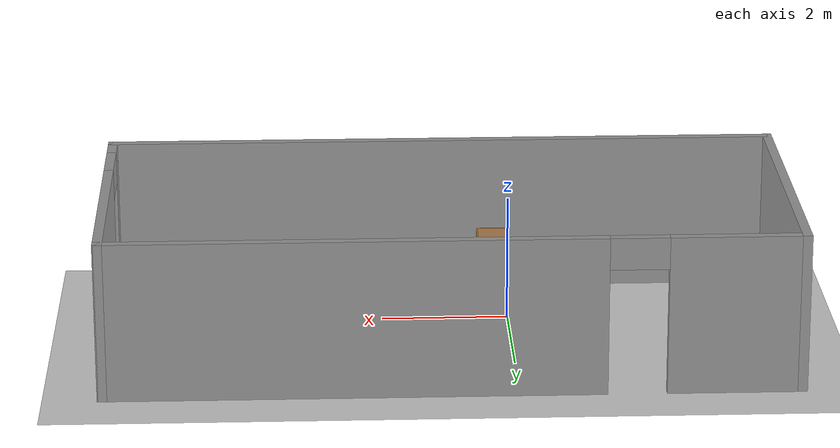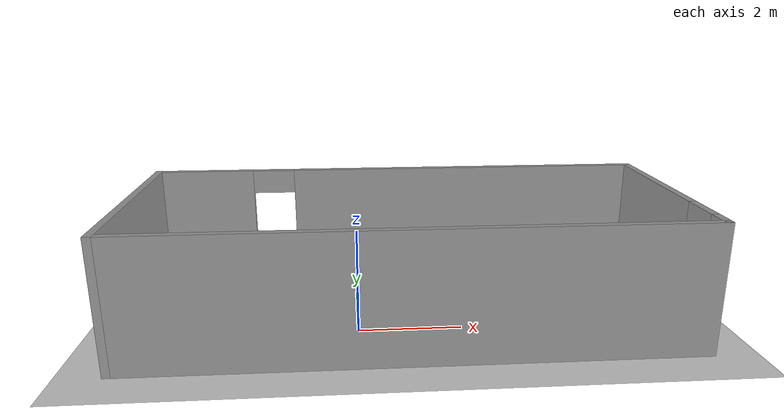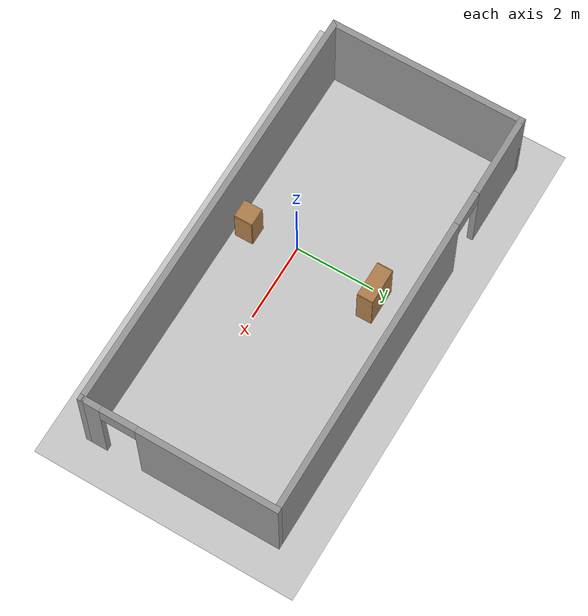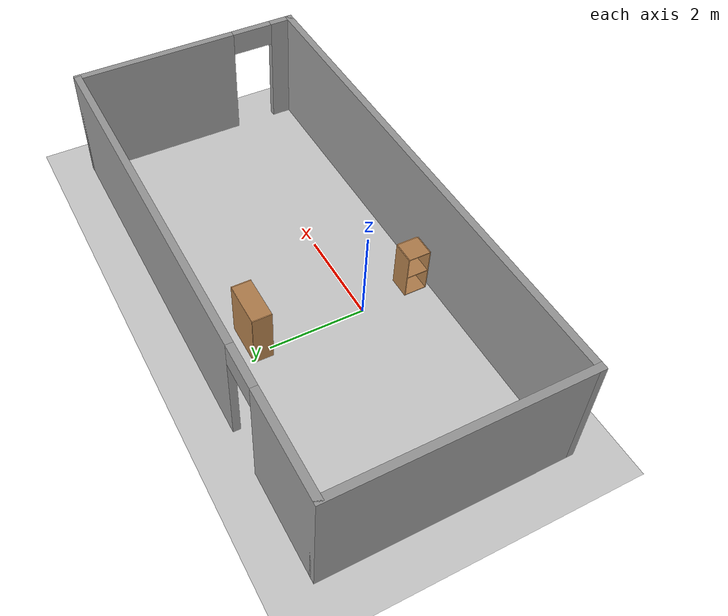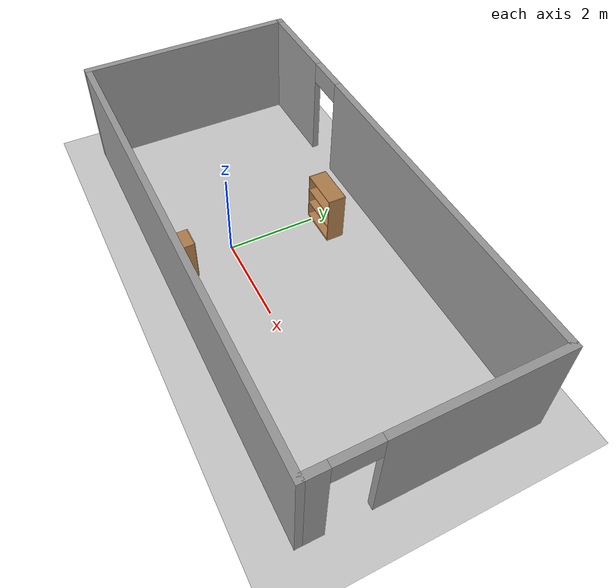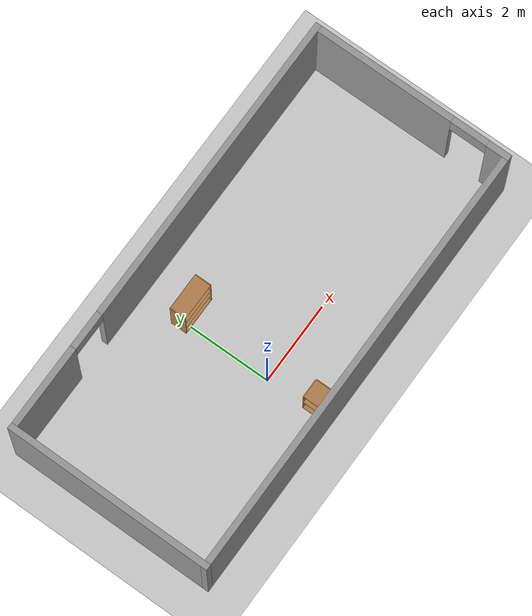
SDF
<sdf version="1.7">
 <world name="default">
  <light name="sun" type="directional">
   <pose>0 0 10 0 -0 0</pose>
   <diffuse>0.8 0.8 0.8 1</diffuse>
   <specular>0.2 0.2 0.2 1</specular>
   <attenuation>
    <range>1000</range>
    <constant>0.9</constant>
    <linear>0.01</linear>
    <quadratic>0.001</quadratic>
   </attenuation>
   <direction>-0.5 0.1 -0.9</direction>
   <spot><inner_angle>0</inner_angle><outer_angle>0</outer_angle><falloff>0</falloff></spot>
  </light>
  <model name="ground_plane">
   <static>1</static>
   <link name="link">
    <collision name="collision">
     <geometry><plane><normal>0 0 1</normal><size>100 100</size></plane></geometry>
     <surface>
      <contact><collide_bitmask>65535</collide_bitmask></contact>
      <friction><ode><mu>100</mu><mu2>50</mu2></ode></friction>
     </surface>
    </collision>
    <visual name="visual">
     <cast_shadows>0</cast_shadows>
     <geometry><plane><normal>0 0 1</normal><size>100 100</size></plane></geometry>
     <material>
      <script><uri>file://media/materials/scripts/gazebo.material</uri><name>Gazebo/Grey</name></script>
     </material>
    </visual>
   </link>
  </model>
  <gravity>0 0 -9.8</gravity>
  <magnetic_field>6e-06 2.3e-05 -4.2e-05</magnetic_field>
  <atmosphere type="adiabatic"/>
  <physics type="ode">
   <max_step_size>0.001</max_step_size>
   <real_time_factor>1</real_time_factor>
   <real_time_update_rate>1000</real_time_update_rate>
  </physics>
  <scene><ambient>0.4 0.4 0.4 1</ambient><background>0.7 0.7 0.7 1</background><shadows>1</shadows></scene>
  <audio><device>default</device></audio>
  <spherical_coordinates>
   <surface_model>EARTH_WGS84</surface_model>
   <latitude_deg>0</latitude_deg>
   <longitude_deg>0</longitude_deg>
   <elevation>0</elevation>
   <heading_deg>0</heading_deg>
  </spherical_coordinates>
  <model name="cabinet">
   <static>1</static>
   <link name="cabinet_bottom_plate">
    <inertial>
     <pose>0 0 -1 0 -0 0</pose>
     <inertia><ixx>2.05</ixx><ixy>0</ixy><ixz>0</ixz><iyy>2.05</iyy><iyz>0</iyz><izz>2.05</izz></inertia>
     <mass>25</mass>
    </inertial>
    <collision name="cabinet_bottom_plate_geom">
     <pose>0 0 0.01 0 -0 0</pose>
     <geometry><box><size>0.45 0.45 0.02</size></box></geometry>
    </collision>
    <visual name="cabinet_bottom_plate_geom_visual">
     <pose>0 0 0.01 0 -0 0</pose>
     <geometry><box><size>0.45 0.45 0.02</size></box></geometry>
     <material>
      <script><uri>file://media/materials/scripts/gazebo.material</uri><name>Gazebo/Wood</name></script>
     </material>
    </visual>
    <collision name="cabinet_bottom_plate_geom_cabinet_back_plate">
     <pose>0.235 0 0.51 0 -0 0</pose>
     <geometry><box><size>0.02 0.45 1.02</size></box></geometry>
    </collision>
    <visual name="cabinet_bottom_plate_geom_cabinet_back_plate_visual">
     <pose>0.235 0 0.51 0 -0 0</pose>
     <geometry><box><size>0.02 0.45 1.02</size></box></geometry>
     <material>
      <script><uri>file://media/materials/scripts/gazebo.material</uri><name>Gazebo/Wood</name></script>
     </material>
    </visual>
    <collision name="cabinet_bottom_plate_geom_cabinet_left_plate">
     <pose>0 0.235 0.51 0 -0 0</pose>
     <geometry><box><size>0.45 0.02 1.02</size></box></geometry>
    </collision>
    <visual name="cabinet_bottom_plate_geom_cabinet_left_plate_visual">
     <pose>0 0.235 0.51 0 -0 0</pose>
     <geometry><box><size>0.45 0.02 1.02</size></box></geometry>
     <material>
      <script><uri>file://media/materials/scripts/gazebo.material</uri><name>Gazebo/Wood</name></script>
     </material>
    </visual>
    <collision name="cabinet_bottom_plate_geom_cabinet_middle_plate">
     <pose>0 0 0.51 0 -0 0</pose>
     <geometry><box><size>0.45 0.45 0.02</size></box></geometry>
    </collision>
    <visual name="cabinet_bottom_plate_geom_cabinet_middle_plate_visual">
     <pose>0 0 0.51 0 -0 0</pose>
     <geometry><box><size>0.45 0.45 0.02</size></box></geometry>
     <material>
      <script><uri>file://media/materials/scripts/gazebo.material</uri><name>Gazebo/Wood</name></script>
     </material>
    </visual>
    <collision name="cabinet_bottom_plate_geom_cabinet_right_plate">
     <pose>0 -0.235 0.51 0 -0 0</pose>
     <geometry><box><size>0.45 0.02 1.02</size></box></geometry>
    </collision>
    <visual name="cabinet_bottom_plate_geom_cabinet_right_plate_visual">
     <pose>0 -0.235 0.51 0 -0 0</pose>
     <geometry><box><size>0.45 0.02 1.02</size></box></geometry>
     <material>
      <script><uri>file://media/materials/scripts/gazebo.material</uri><name>Gazebo/Wood</name></script>
     </material>
    </visual>
    <collision name="cabinet_bottom_plate_geom_cabinet_top_plate">
     <pose>0 0 1.01 0 -0 0</pose>
     <geometry><box><size>0.45 0.45 0.02</size></box></geometry>
    </collision>
    <visual name="cabinet_bottom_plate_geom_cabinet_top_plate_visual">
     <pose>0 0 1.01 0 -0 0</pose>
     <geometry><box><size>0.45 0.45 0.02</size></box></geometry>
     <material>
      <script><uri>file://media/materials/scripts/gazebo.material</uri><name>Gazebo/Wood</name></script>
     </material>
    </visual>
   </link>
   <pose>0.191951 -1.17646 0 0 -0 0</pose>
  </model>
  <model name="bookshelf">
   <static>1</static>
   <link name="link">
    <inertial><mass>1</mass></inertial>
    <collision name="back">
     <pose>0 0.005 0.6 0 -0 0</pose>
     <geometry><box><size>0.9 0.01 1.2</size></box></geometry>
    </collision>
    <visual name="visual1">
     <pose>0 0.005 0.6 0 -0 0</pose>
     <geometry><box><size>0.9 0.01 1.2</size></box></geometry>
     <material>
      <script><uri>file://media/materials/scripts/gazebo.material</uri><name>Gazebo/Wood</name></script>
     </material>
    </visual>
    <collision name="left_side">
     <pose>0.45 -0.195 0.6 0 -0 0</pose>
     <geometry><box><size>0.02 0.4 1.2</size></box></geometry>
    </collision>
    <visual name="visual2">
     <pose>0.45 -0.195 0.6 0 -0 0</pose>
     <geometry><box><size>0.02 0.4 1.2</size></box></geometry>
     <material>
      <script><uri>file://media/materials/scripts/gazebo.material</uri><name>Gazebo/Wood</name></script>
     </material>
    </visual>
    <collision name="right_side">
     <pose>-0.45 -0.195 0.6 0 -0 0</pose>
     <geometry><box><size>0.02 0.4 1.2</size></box></geometry>
    </collision>
    <visual name="visual3">
     <pose>-0.45 -0.195 0.6 0 -0 0</pose>
     <geometry><box><size>0.02 0.4 1.2</size></box></geometry>
     <material>
      <script><uri>file://media/materials/scripts/gazebo.material</uri><name>Gazebo/Wood</name></script>
     </material>
    </visual>
    <collision name="bottom">
     <pose>0 -0.195 0.03 0 -0 0</pose>
     <geometry><box><size>0.88 0.4 0.06</size></box></geometry>
    </collision>
    <visual name="visual4">
     <pose>0 -0.195 0.03 0 -0 0</pose>
     <geometry><box><size>0.88 0.4 0.06</size></box></geometry>
     <material>
      <script><uri>file://media/materials/scripts/gazebo.material</uri><name>Gazebo/Wood</name></script>
     </material>
    </visual>
    <collision name="top">
     <pose>0 -0.195 1.19 0 -0 0</pose>
     <geometry><box><size>0.88 0.4 0.02</size></box></geometry>
    </collision>
    <visual name="visual5">
     <pose>0 -0.195 1.19 0 -0 0</pose>
     <geometry><box><size>0.88 0.4 0.02</size></box></geometry>
     <material>
      <script><uri>file://media/materials/scripts/gazebo.material</uri><name>Gazebo/Wood</name></script>
     </material>
    </visual>
    <collision name="low_shelf">
     <pose>0 -0.195 0.43 0 -0 0</pose>
     <geometry><box><size>0.88 0.4 0.02</size></box></geometry>
    </collision>
    <visual name="visual6">
     <pose>0 -0.195 0.43 0 -0 0</pose>
     <geometry><box><size>0.88 0.4 0.02</size></box></geometry>
     <material>
      <script><uri>file://media/materials/scripts/gazebo.material</uri><name>Gazebo/Wood</name></script>
     </material>
    </visual>
    <collision name="high_shelf">
     <pose>0 -0.195 0.8 0 -0 0</pose>
     <geometry><box><size>0.88 0.4 0.02</size></box></geometry>
    </collision>
    <visual name="visual7">
     <pose>0 -0.195 0.8 0 -0 0</pose>
     <geometry><box><size>0.88 0.4 0.02</size></box></geometry>
     <material>
      <script><uri>file://media/materials/scripts/gazebo.material</uri><name>Gazebo/Wood</name></script>
     </material>
    </visual>
   </link>
   <pose>0.292352 2.39171 0 0 -0 0</pose>
  </model>
  <model name="test2">
   <pose>1 0.855 0 0 -0 0</pose>
   <link name="Wall_27">
    <collision name="Wall_27_Collision">
     <geometry><box><size>5 0.15 2.5</size></box></geometry>
     <pose>0 0 1.25 0 -0 0</pose>
    </collision>
    <visual name="Wall_27_Visual">
     <pose>0 0 1.25 0 -0 0</pose>
     <geometry><box><size>5 0.15 2.5</size></box></geometry>
     <material>
      <script><uri>file://media/materials/scripts/gazebo.material</uri><name>Gazebo/Grey</name></script>
      <ambient>1 1 1 1</ambient>
     </material>
     <meta><layer>0</layer></meta>
    </visual>
    <pose>-5.3 0 0 0 -0 1.5708</pose>
   </link>
   <link name="Wall_28">
    <pose>0 2.425 0 0 -0 0</pose>
    <visual name="Wall_28_Visual_0">
     <pose>-4.3075 0 1.25 0 -0 0</pose>
     <geometry><box><size>2.135 0.15 2.5</size></box></geometry>
     <material>
      <script><uri>file://media/materials/scripts/gazebo.material</uri><name>Gazebo/Grey</name></script>
      <ambient>1 1 1 1</ambient>
     </material>
     <meta><layer>0</layer></meta>
    </visual>
    <collision name="Wall_28_Collision_0">
     <geometry><box><size>2.135 0.15 2.5</size></box></geometry>
     <pose>-4.3075 0 1.25 0 -0 0</pose>
    </collision>
    <visual name="Wall_28_Visual_1">
     <pose>1.5175 0 1.25 0 -0 0</pose>
     <geometry><box><size>7.715 0.15 2.5</size></box></geometry>
     <material>
      <script><uri>file://media/materials/scripts/gazebo.material</uri><name>Gazebo/Grey</name></script>
      <ambient>1 1 1 1</ambient>
     </material>
     <meta><layer>0</layer></meta>
    </visual>
    <collision name="Wall_28_Collision_1">
     <geometry><box><size>7.715 0.15 2.5</size></box></geometry>
     <pose>1.5175 0 1.25 0 -0 0</pose>
    </collision>
    <visual name="Wall_28_Visual_2">
     <pose>-2.79 0 2.25 0 -0 0</pose>
     <geometry><box><size>0.9 0.15 0.5</size></box></geometry>
     <material>
      <script><uri>file://media/materials/scripts/gazebo.material</uri><name>Gazebo/Grey</name></script>
      <ambient>1 1 1 1</ambient>
     </material>
     <meta><layer>0</layer></meta>
    </visual>
    <collision name="Wall_28_Collision_2">
     <geometry><box><size>0.9 0.15 0.5</size></box></geometry>
     <pose>-2.79 0 2.25 0 -0 0</pose>
    </collision>
   </link>
   <link name="Wall_29">
    <pose>5.3 0 0 0 -0 -1.5708</pose>
    <visual name="Wall_29_Visual_0">
     <pose>-0.7275 0 1.25 0 -0 0</pose>
     <geometry><box><size>3.545 0.15 2.5</size></box></geometry>
     <material>
      <script><uri>file://media/materials/scripts/gazebo.material</uri><name>Gazebo/Grey</name></script>
      <ambient>1 1 1 1</ambient>
     </material>
     <meta><layer>0</layer></meta>
    </visual>
    <collision name="Wall_29_Collision_0">
     <geometry><box><size>3.545 0.15 2.5</size></box></geometry>
     <pose>-0.7275 0 1.25 0 -0 0</pose>
    </collision>
    <visual name="Wall_29_Visual_1">
     <pose>2.2225 0 1.25 0 -0 0</pose>
     <geometry><box><size>0.555 0.15 2.5</size></box></geometry>
     <material>
      <script><uri>file://media/materials/scripts/gazebo.material</uri><name>Gazebo/Grey</name></script>
      <ambient>1 1 1 1</ambient>
     </material>
     <meta><layer>0</layer></meta>
    </visual>
    <collision name="Wall_29_Collision_1">
     <geometry><box><size>0.555 0.15 2.5</size></box></geometry>
     <pose>2.2225 0 1.25 0 -0 0</pose>
    </collision>
    <visual name="Wall_29_Visual_2">
     <pose>1.495 0 2.25 0 -0 0</pose>
     <geometry><box><size>0.9 0.15 0.5</size></box></geometry>
     <material>
      <script><uri>file://media/materials/scripts/gazebo.material</uri><name>Gazebo/Grey</name></script>
      <ambient>1 1 1 1</ambient>
     </material>
     <meta><layer>0</layer></meta>
    </visual>
    <collision name="Wall_29_Collision_2">
     <geometry><box><size>0.9 0.15 0.5</size></box></geometry>
     <pose>1.495 0 2.25 0 -0 0</pose>
    </collision>
   </link>
   <link name="Wall_30">
    <collision name="Wall_30_Collision">
     <geometry><box><size>10.75 0.15 2.5</size></box></geometry>
     <pose>0 0 1.25 0 -0 0</pose>
    </collision>
    <visual name="Wall_30_Visual">
     <pose>0 0 1.25 0 -0 0</pose>
     <geometry><box><size>10.75 0.15 2.5</size></box></geometry>
     <material>
      <script><uri>file://media/materials/scripts/gazebo.material</uri><name>Gazebo/Grey</name></script>
      <ambient>1 1 1 1</ambient>
     </material>
     <meta><layer>0</layer></meta>
    </visual>
    <pose>0 -2.425 0 0 -0 3.14159</pose>
   </link>
   <static>1</static>
  </model>
 </world>
</sdf>
